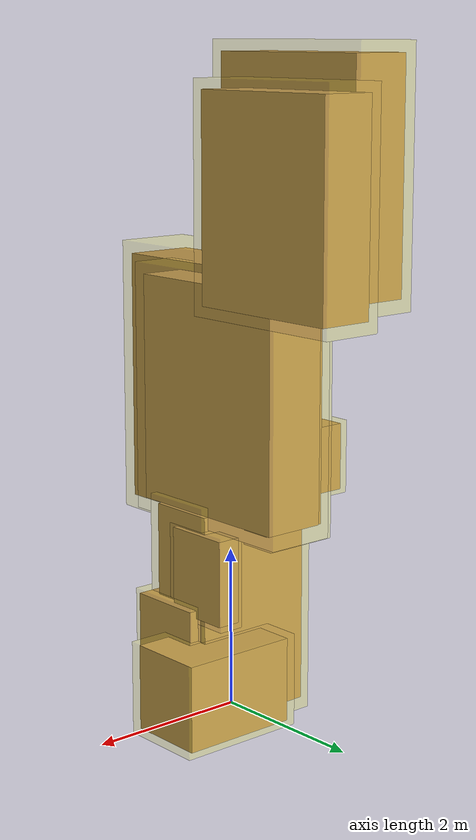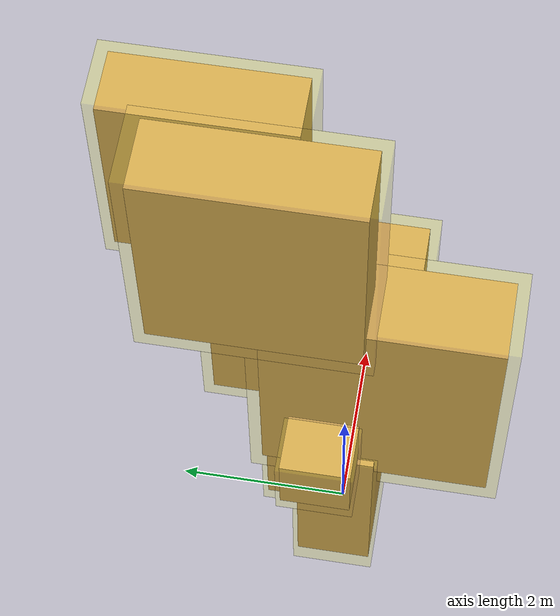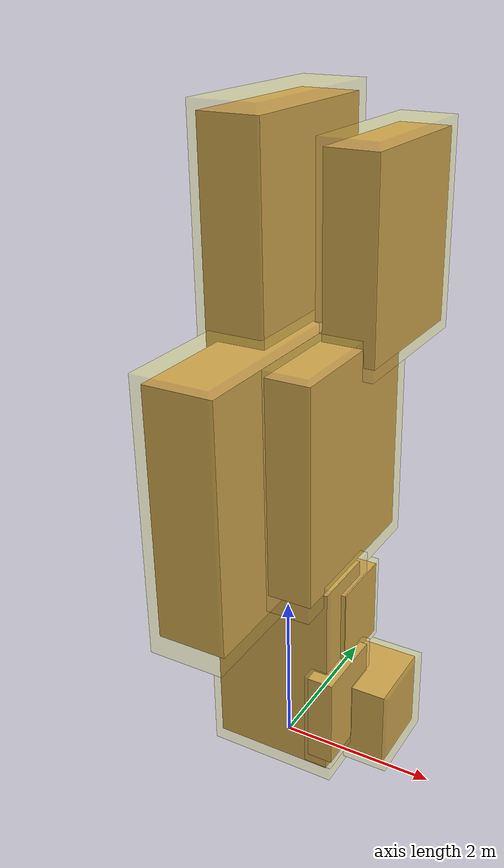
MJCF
<mujoco model="Two Arm Rower">
    <compiler angle="degree" />
    <default>
		<motor ctrlrange="-1.0 1.0" ctrllimited="true" gear="16000" />
        <geom friction="1 0.5 0.5" solref=".02 1" solimp="0 .8 .01" material="self" density="50.0" />
        <joint limited="true" armature="1" damping="1" stiffness="1" solreflimit=".04 1"
            solimplimit="0 .8 .03" />
        <default class="rangefinder">
            <site type="capsule" size=".05 .5" rgba="1 0 0 .4" group="4" />
        </default>
    </default>
    <asset>
        <material name="self" rgba=".8 .6 .4 1" />
    </asset>

    <worldbody>
        <body name="seg0" pos="0 0 1.3171674">

            <camera name="floating" pos="-8 0 4" xyaxes="0 -1 0 .5 0 1" mode="trackcom" fovy="70" />

            <!-- KEEP THIS -->
            <camera name="egocentric" pos=".25 0 .11" xyaxes="0 -1 0 0 0 1" fovy="90" />

            <!-- Sensors as we need -->
            <site name="rf_xp" class="rangefinder" pos="0.25 0 0.11" zaxis="1 0 0" />
            <site name="rf_xn" class="rangefinder" pos="-0.25 0 0.11" zaxis="-1 0 0" />
            <site name="rf_yp" class="rangefinder" pos="0 0.25 0.11" zaxis="0 1 0" />
            <site name="rf_yn" class="rangefinder" pos="0 -0.25 0.11" zaxis="0 -1 0" />
            <site name="rf_xpyp" class="rangefinder" pos="0.25 0.25 0.11" zaxis="1 1 0" />
            <site name="rf_xpyn" class="rangefinder" pos="0.25 -0.25 0.11" zaxis="1 -1 0" />
            <site name="rf_xnyn" class="rangefinder" pos="-0.25 -0.25 0.11" zaxis="-1 -1 0" />
            <site name="rf_xnyp" class="rangefinder" pos="-0.25 0.25 0.11" zaxis="-1 1 0" />

            <!-- sites that visualize the x-y axis of the ant body, good for debugging -->
            <site name="z_pos" type="capsule" pos="0 0 0.5" size=".05 .5" zaxis="0 0 1"
                rgba="0 1 0 1" group="5" />
            <site name="port_site" pos=".5 0 0" size="0.5" rgba="1 0 0 1" group="5" />
            <site name="starboard_site" pos="-.5 0 0" size="0.5" rgba="0 1 0 1" group="5" />

            <geom name="seg0_geom" type="box" pos="0 0 0" size="0.7817855 0.436341643 1.3171674" euler="0.0 0.0 0.0" />
            <site name="seg0_site" type="box" pos="0 0 0" size="0.8599641 0.479975807 1.4488841" zaxis="0 0 1" rgba="1 1 0 0.15" />

            <body name="seg1" pos="-0.746078492 0.13879776 1.736679731">
                <joint name="seg0_to_1" range="-75 75" type="hinge" axis="0 0 1" pos="0.477163136 -0.159047112 -1.0 "/>
                <geom name="seg1_geom" type="box" pos="0 0 0" size="0.595344 0.388579845 0.419512331" euler="0.0008985509 0.00109280727 0.004466458" />
                <site name="seg1_site" type="box" pos="0 0 0" size="0.6548784 0.4274378295 0.4614635641" zaxis="0 0 1" rgba="1 1 0 0.15" />
            </body>

            <body name="seg2" pos="0.781785488 -0.12621116 -0.4193217760000001">
                <joint name="seg0_to_2" range="-75 75" type="hinge" axis="0 1 0" pos="-0.49999997 0.144624248 -0.116638534 "/>
                <geom name="seg2_geom" type="box" pos="0 0 0" size="0.165260255 0.482132822 0.5905807" euler="0.000849346863 0.00307855778 0.0009179028" />
                <site name="seg2_site" type="box" pos="0 0 0" size="0.18178628 0.5303461042 0.64963877" zaxis="0 0 1" rgba="1 1 0 0.15" />

                <body name="seg3" pos="-0.08037185600000007 0.482152932 1.013563076">
                    <joint name="seg2_to_3" range="-75 75" type="hinge" axis="0 1 0" pos="0.243193358 -0.4999997 -0.917953253 "/>
                    <geom name="seg3_geom" type="box" pos="0 0 0" size="0.145482287 0.424432218 0.5199013" euler="0.000849346863 0.00307855778 0.0009179028" />
                    <site name="seg3_site" type="box" pos="0 0 0" size="0.1600305157 0.4668754398 0.57189143" zaxis="0 0 1" rgba="1 1 0 0.15" />
                </body>
            </body>

            <body name="seg4" pos="0.3417406 0.382444382 2.6967352600000005">
                <joint name="seg0_to_4" range="-75 75" type="hinge" axis="0 1 0" pos="-0.218564168 -0.4382396 -1.0 "/>
                <geom name="seg4_geom" type="box" pos="0 0 0" size="0.386039972 1.126239 1.37956786" euler="0.0 0.0 0.0" />
                <site name="seg4_site" type="box" pos="0 0 0" size="0.4246439692 1.2388629 1.517524646" zaxis="0 0 1" rgba="1 1 0 0.15" />

                <body name="seg5" pos="0.18776560000000003 1.126239818 2.36765385">
                    <joint name="seg4_to_5" range="-75 75" type="hinge" axis="0 1 0" pos="-0.243194491 -0.500000358 -0.917953134 "/>
                    <geom name="seg5_geom" type="box" pos="0 0 0" size="0.339839548 0.9914531 1.21446419" euler="0.0 0.0 0.0" />
                    <site name="seg5_site" type="box" pos="0 0 0" size="0.3738235028 1.09059841 1.335910609" zaxis="0 0 1" rgba="1 1 0 0.15" />
                </body>
            </body>

            <body name="seg6" pos="-0.27436924 -0.43634224 2.61815406">
                <joint name="seg0_to_6" range="-75 75" type="hinge" axis="0 1 0" pos="0.17547603 0.500000656 -0.9004083 "/>
                <geom name="seg6_geom" type="box" pos="0 0 0" size="0.4374656 1.27626884 1.5633446" euler="0.0009045518 -0.000434916059 -0.00434324844" />
                <site name="seg6_site" type="box" pos="0 0 0" size="0.48121216 1.403895724 1.7196791" zaxis="0 0 1" rgba="1 1 0 0.15" />

                <body name="seg7" pos="-0.21257019 1.2763118759999998 2.68305289">
                    <joint name="seg6_to_7" range="-75 75" type="hinge" axis="0 1 0" pos="0.243194059 -0.499999762 -0.917953253 "/>
                    <geom name="seg7_geom" type="box" pos="0 0 0" size="0.385110676 1.12352777 1.37624693" euler="0.0009045518 -0.000434916059 -0.00434324844" />
                    <site name="seg7_site" type="box" pos="0 0 0" size="0.4236217436 1.235880547 1.513871623" zaxis="0 0 1" rgba="1 1 0 0.15" />
                </body>
            </body>

            <body name="seg8" pos="0.643415928 0.43634224 -0.7651751024">
                <joint name="seg0_to_8" range="-75 75" type="hinge" axis="0 0 1" pos="-0.41150412 -0.500000656 -0.01056538 "/>
                <geom name="seg8_geom" type="box" pos="0 0 0" size="0.7438524 0.485510945 0.524159551" euler="0.0 0.0 0.0" />
                <site name="seg8_site" type="box" pos="0 0 0" size="0.81823764 0.5340620395 0.5765755061" zaxis="0 0 1" rgba="1 1 0 0.15" />
            </body>
        </body>
    </worldbody>

    <actuator>
        <motor name="motor0_to_1" joint="seg0_to_1" gear="1111.6875" />
        <motor name="motor0_to_2" joint="seg0_to_2" gear="800.0" />
        <motor name="motor2_to_3" joint="seg2_to_3" gear="422.959" />
        <motor name="motor0_to_4" joint="seg0_to_4" gear="55642.824" />
        <motor name="motor4_to_5" joint="seg4_to_5" gear="29418.2855" />
        <motor name="motor0_to_6" joint="seg0_to_6" gear="103984.20" />
        <motor name="motor6_to_7" joint="seg6_to_7" gear="54976.289" />
        <motor name="motor0_to_8" joint="seg0_to_8" gear="3385.1395" />
    </actuator>

    <sensor>
        <!-- Sensors for touch and other info -->
        <touch name="seg0_touch" site="seg0_site" />
        <touch name="seg1_touch" site="seg1_site" />
        <touch name="seg2_touch" site="seg2_site" />
        <touch name="seg3_touch" site="seg3_site" />
        <touch name="seg4_touch" site="seg4_site" />
        <touch name="seg5_touch" site="seg5_site" />
        <touch name="seg6_touch" site="seg6_site" />
        <touch name="seg7_touch" site="seg7_site" />
        <touch name="seg8_touch" site="seg8_site" />
        <velocimeter name="torso_vel" site="seg0_site" />
        <gyro name="torso_gyro" site="seg0_site" />
        <accelerometer name="torso_accel" site="seg0_site" />
    </sensor>

    <contact>
        <!-- Contact Exclusions (should be everything) -->
        <exclude body1="seg0" body2="seg1" />
        <exclude body1="seg0" body2="seg2" />
        <exclude body1="seg0" body2="seg3" />
        <exclude body1="seg0" body2="seg4" />
        <exclude body1="seg0" body2="seg5" />
        <exclude body1="seg0" body2="seg6" />
        <exclude body1="seg0" body2="seg7" />
        <exclude body1="seg0" body2="seg8" />
        <exclude body1="seg1" body2="seg2" />
        <exclude body1="seg1" body2="seg3" />
        <exclude body1="seg1" body2="seg4" />
        <exclude body1="seg1" body2="seg5" />
        <exclude body1="seg1" body2="seg6" />
        <exclude body1="seg1" body2="seg7" />
        <exclude body1="seg1" body2="seg8" />
        <exclude body1="seg2" body2="seg3" />
        <exclude body1="seg2" body2="seg4" />
        <exclude body1="seg2" body2="seg5" />
        <exclude body1="seg2" body2="seg6" />
        <exclude body1="seg2" body2="seg7" />
        <exclude body1="seg2" body2="seg8" />
        <exclude body1="seg3" body2="seg4" />
        <exclude body1="seg3" body2="seg5" />
        <exclude body1="seg3" body2="seg6" />
        <exclude body1="seg3" body2="seg7" />
        <exclude body1="seg3" body2="seg8" />
        <exclude body1="seg4" body2="seg5" />
        <exclude body1="seg4" body2="seg6" />
        <exclude body1="seg4" body2="seg7" />
        <exclude body1="seg4" body2="seg8" />
        <exclude body1="seg5" body2="seg6" />
        <exclude body1="seg5" body2="seg7" />
        <exclude body1="seg5" body2="seg8" />
        <exclude body1="seg6" body2="seg7" />
        <exclude body1="seg6" body2="seg8" />
        <exclude body1="seg7" body2="seg8" />
    </contact>
</mujoco>
